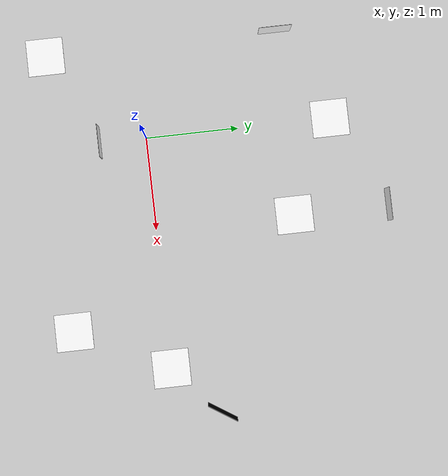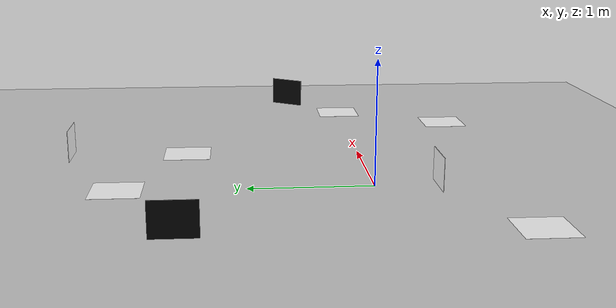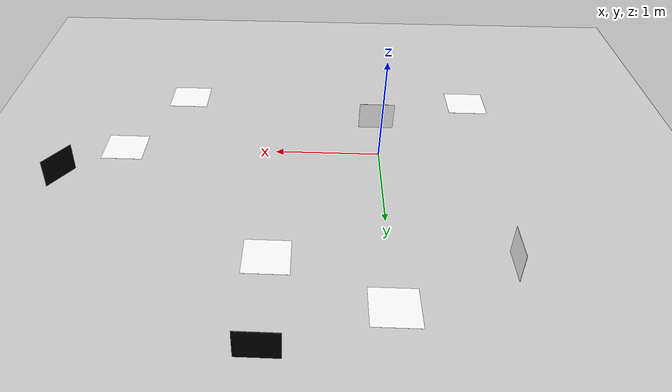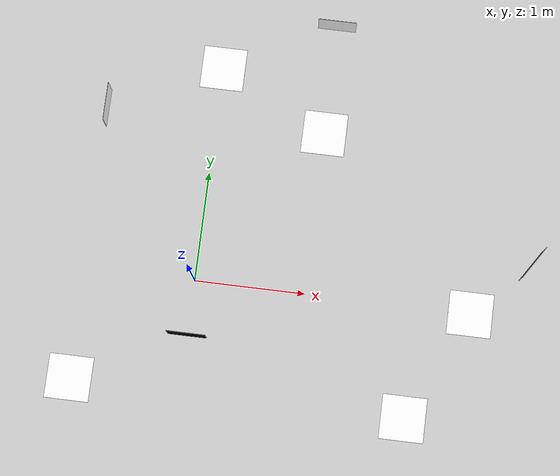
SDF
<sdf version="1.4">
  <world name="default">

    <physics name="1ms" type="ignored">
      <max_step_size>0.001</max_step_size>
      <real_time_factor>1.0</real_time_factor>
    </physics>
    <plugin
      filename="gz-sim-physics-system"
      name="gz::sim::systems::Physics">
    </plugin>
    <plugin
      filename="gz-sim-user-commands-system"
      name="gz::sim::systems::UserCommands">
    </plugin>
    <plugin
      filename="gz-sim-scene-broadcaster-system"
      name="gz::sim::systems::SceneBroadcaster">
    </plugin>

    <plugin
        filename="gz-sim-sensors-system"
        name="gz::sim::systems::Sensors">
        <render_engine>ogre2</render_engine>
    </plugin>

    <scene>
      <ambient>0 0 0 1</ambient>
      <background>0.7 0.7 0.7 1</background>
      <shadows>0</shadows>
    </scene>

    <!-- Arena lights -->
    <include>
      <uri>model://simple_light</uri>
    </include>

      <light name='point_light_0' type='point'>
        <pose frame=''>1 -1 1 0 0 0</pose>
        <diffuse>0.5 0.5 0.5 1</diffuse>
        <specular>0.3 0.3 0.3 1</specular>
        <attenuation>
          <range>20</range>
          <constant>0.5</constant>
          <linear>0.01</linear>
          <quadratic>0.001</quadratic>
        </attenuation>
        <cast_shadows>0</cast_shadows>
        <direction>-0.3 0.3 -1</direction>
    </light>

    <light name='point_light_1' type='point'>
      <pose frame=''>-1 1 1 0 0 0</pose>
      <diffuse>0.5 0.5 0.5 1</diffuse>
      <specular>0.3 0.3 0.3 1</specular>
      <attenuation>
        <range>20</range>
        <constant>0.5</constant>
        <linear>0.01</linear>
        <quadratic>0.001</quadratic>
      </attenuation>
      <cast_shadows>0</cast_shadows>
      <direction>0.3 -0.3 -1</direction>
    </light>

    <!-- An empty plane -->

    <!-- Puzzlebot wood plane -->
    <include>
      <uri>model://puzzlebot_base</uri>
    </include>

    <include>
      <name>marker_1</name>
      <uri>model://aruco_marker_1</uri>
      <pose>1 2.5 0.091 0 0 3.141592654</pose>
    </include>

    <include>
      <name>marker_2</name>
      <uri>model://aruco_marker_2</uri>
      <pose>-1.0 1.5 0.091 0 0 -1.5708</pose>
    </include>

    <include>
      <name>marker_3</name>
      <uri>model://aruco_marker_3</uri>
      <pose>0.0 -0.5 0.091 0 0 0</pose>
    </include>

    <include>
      <name>marker_4</name>
      <uri>model://aruco_marker_4</uri>
      <pose>3.0 0.5 0.091 0 0 -2.1415</pose>
    </include>

    <include>
      <name>goal_marker_0</name>
      <uri>model://goal_marker_5</uri>
      <pose>0 2 0.01 0 0 0</pose>
    </include>

    <include>
      <name>goal_marker_1</name>
      <uri>model://goal_marker_5</uri>
      <pose>1 1.5 0.01 0 0 0</pose>
    </include>

    <include>
      <name>goal_marker_2</name>
      <uri>model://goal_marker_5</uri>
      <pose>2.5 0 0.01 0 0 0</pose>
    </include>

    <include>
      <name>goal_marker_3</name>
      <uri>model://goal_marker_5</uri>
      <pose>2 -1 0.01 0 0 0</pose>
    </include>

    <include>
      <name>goal_marker_4</name>
      <uri>model://goal_marker_5</uri>
      <pose>-1 -1 0.01 0 0 0</pose>
    </include>

  </world>
</sdf>

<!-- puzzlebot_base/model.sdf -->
<sdf version="1.9">
    <model name="puzzlebot_base">
        <static>true</static>
        <link name="link">
            <collision name="collision">
                <geometry>
                    <plane>
                        <normal>0 0 1</normal>
                        <size>10.0 10.0</size>
                    </plane>
                </geometry>
                <surface>
                    <contact>
                        <collide_bitmask>0xffff</collide_bitmask>
                    </contact>
                    <friction>
                        <ode>
                            <mu>100</mu>
                            <mu2>50</mu2>
                        </ode>
                    </friction>
                </surface>
            </collision>

            <visual name="puzzlebot_visual">
                <pose>0 0 0.001 0 0 0</pose>
                <cast_shadows>false</cast_shadows>
                <geometry>
                    <plane>
                        <normal>0 0 1</normal>
                        <size>8.0 8.0</size>
                    </plane>
                </geometry>

                <material>
                    <ambient>0.8 0.8 0.8 1</ambient>
                    <diffuse>0.8 0.8 0.8 1</diffuse>
                    <specular>1 0.8 0.8 1</specular>
                    <pbr>
                        <metal>
                        <albedo_map>model://puzzlebot_base/materials/textures/puzzlebot_wood_6.png</albedo_map>
                        <normal_map>model://puzzlebot_base/materials/textures/puzzlebot_wood_6.png</normal_map>
                        </metal>
                    </pbr>
                </material>
            </visual>
        </link>
    </model>
</sdf>

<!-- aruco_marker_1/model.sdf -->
<sdf version="1.9">
  <model name="aruco_marker_1">
    <static>true</static>

    <link name="link">
      <visual name="front">
        <pose>0 0 0 0 0 0</pose>
        <geometry>
          <box>
            <size>0.35 0.002 0.35</size>
          </box>
        </geometry>

        <material>
          <ambient>1 1 1 1</ambient>
          <diffuse>1 1 1 1</diffuse>
          <specular>0.1 0.1 0.1 1</specular>
          <emissive>0 0 0 1</emissive>

          <pbr>
            <metal>
              <albedo_map>
                model://aruco/aruco_marker_1/materials/textures/marker_1.png
              </albedo_map>
              <emissive_map>
                model://aruco/aruco_marker_1/materials/textures/marker_1.png
              </emissive_map>
            </metal>
          </pbr>
        </material>
      </visual>

      <visual name="back">
        <pose>0 -0.002 0 0 0 3.1416</pose>
        <geometry>
          <box>
            <size>0.35 0.002 0.35</size>
          </box>
        </geometry>
        <material>
          <ambient>0 0 0 1</ambient>
          <diffuse>0 0 0 1</diffuse>
        </material>
      </visual>

    </link>

  </model>
</sdf>

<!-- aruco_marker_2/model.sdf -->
<sdf version="1.9">
  <model name="aruco_marker_2">
    <static>true</static>

    <link name="link">
      <visual name="front">
        <pose>0 0 0 0 0 0</pose>
        <geometry>
          <box>
            <size>0.35 0.002 0.35</size>
          </box>
        </geometry>

        <material>
          <ambient>1 1 1 1</ambient>
          <diffuse>1 1 1 1</diffuse>
          <specular>0.1 0.1 0.1 1</specular>
          <emissive>0 0 0 1</emissive>

          <pbr>
            <metal>
              <albedo_map>
                model://aruco/aruco_marker_2/materials/textures/marker_2.png
              </albedo_map>
              <emissive_map>
                model://aruco/aruco_marker_2/materials/textures/marker_2.png
              </emissive_map>
            </metal>
          </pbr>
        </material>
      </visual>

      <visual name="back">
        <pose>0 -0.002 0 0 0 3.1416</pose>
        <geometry>
          <box>
            <size>0.35 0.002 0.35</size>
          </box>
        </geometry>
        <material>
          <ambient>0 0 0 1</ambient>
          <diffuse>0 0 0 1</diffuse>
        </material>
      </visual>

    </link>

  </model>
</sdf>

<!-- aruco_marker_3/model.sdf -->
<sdf version="1.9">
  <model name="aruco_marker_3">
    <static>true</static>

    <link name="link">
      <visual name="front">
        <pose>0 0 0 0 0 0</pose>
        <geometry>
          <box>
            <size>0.35 0.002 0.35</size>
          </box>
        </geometry>

        <material>
          <ambient>1 1 1 1</ambient>
          <diffuse>1 1 1 1</diffuse>
          <specular>0.1 0.1 0.1 1</specular>
          <emissive>0 0 0 1</emissive>

          <pbr>
            <metal>
              <albedo_map>
                model://aruco/aruco_marker_3/materials/textures/marker_3.png
              </albedo_map>
              <emissive_map>
                model://aruco/aruco_marker_3/materials/textures/marker_3.png
              </emissive_map>
            </metal>
          </pbr>
        </material>
      </visual>

      <visual name="back">
        <pose>0 -0.002 0 0 0 3.1416</pose>
        <geometry>
          <box>
            <size>0.35 0.002 0.35</size>
          </box>
        </geometry>
        <material>
          <ambient>0 0 0 1</ambient>
          <diffuse>0 0 0 1</diffuse>
        </material>
      </visual>

    </link>

  </model>
</sdf>

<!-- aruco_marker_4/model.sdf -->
<sdf version="1.9">
  <model name="aruco_marker_4">
    <static>true</static>

    <link name="link">
      <visual name="front">
        <pose>0 0 0 0 0 0</pose>
        <geometry>
          <box>
            <size>0.35 0.002 0.35</size>
          </box>
        </geometry>

        <material>
          <ambient>1 1 1 1</ambient>
          <diffuse>1 1 1 1</diffuse>
          <specular>0.1 0.1 0.1 1</specular>
          <emissive>0 0 0 1</emissive>

          <pbr>
            <metal>
              <albedo_map>
                model://aruco/aruco_marker_4/materials/textures/marker_4.png
              </albedo_map>
              <emissive_map>
                model://aruco/aruco_marker_4/materials/textures/marker_4.png
              </emissive_map>
            </metal>
          </pbr>
        </material>
      </visual>

      <visual name="back">
        <pose>0 -0.002 0 0 0 3.1416</pose>
        <geometry>
          <box>
            <size>0.35 0.002 0.35</size>
          </box>
        </geometry>
        <material>
          <ambient>0 0 0 1</ambient>
          <diffuse>0 0 0 1</diffuse>
        </material>
      </visual>

    </link>

  </model>
</sdf>

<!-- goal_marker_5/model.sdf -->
<sdf version="1.5">
        <model name="goal_marker_5">
            <static>true</static>
                <link name="link">
                    <pose>0 0 0 0 0 0</pose>
                    <visual name="visual">
                        <cast_shadows>false</cast_shadows>
                        <geometry>
                            <plane>
                                    <normal>0 0 1</normal>
                                    <size>0.4 0.4</size>
                            </plane>
                        </geometry>
                        <material>
                            <ambient>1 1 1 1</ambient>
                            <diffuse>1 1 1 1</diffuse>
                            <specular>1 1 1 1</specular>
                            <pbr>
                                <metal>
                                <albedo_map>model://goal_marker_5/materials/textures/mcr2_goal_5.png</albedo_map>
                                <normal_map>model://goal_marker_5/materials/textures/mcr2_goal_5.png</normal_map>
                                </metal>
                            </pbr>
                        </material>
                    </visual>
                </link>
        </model>
    </sdf>
